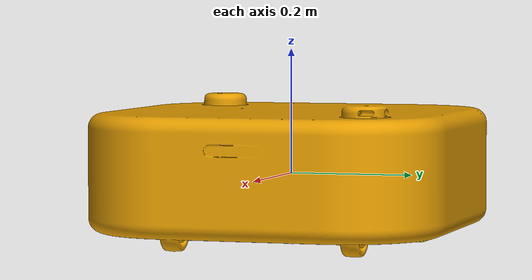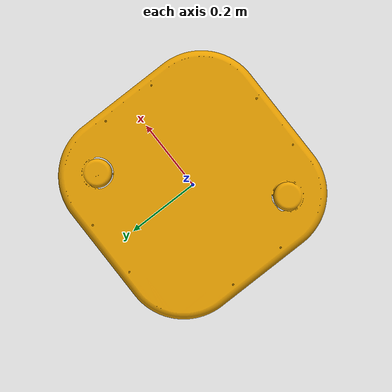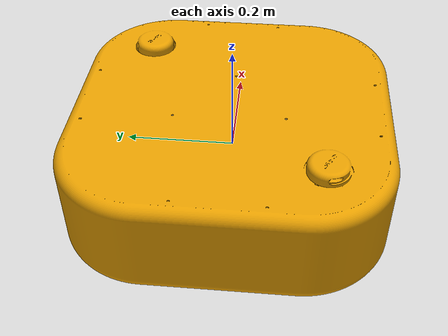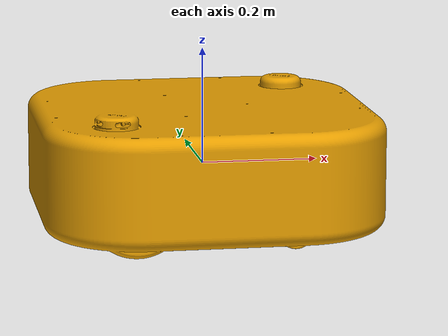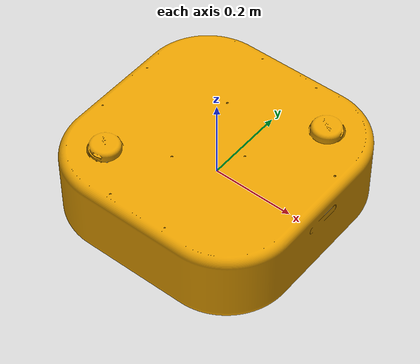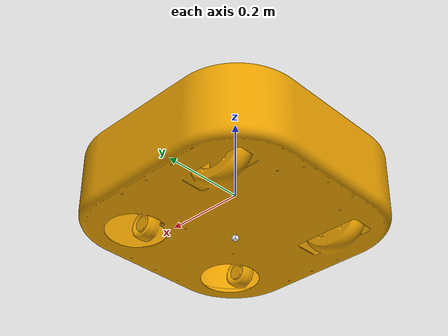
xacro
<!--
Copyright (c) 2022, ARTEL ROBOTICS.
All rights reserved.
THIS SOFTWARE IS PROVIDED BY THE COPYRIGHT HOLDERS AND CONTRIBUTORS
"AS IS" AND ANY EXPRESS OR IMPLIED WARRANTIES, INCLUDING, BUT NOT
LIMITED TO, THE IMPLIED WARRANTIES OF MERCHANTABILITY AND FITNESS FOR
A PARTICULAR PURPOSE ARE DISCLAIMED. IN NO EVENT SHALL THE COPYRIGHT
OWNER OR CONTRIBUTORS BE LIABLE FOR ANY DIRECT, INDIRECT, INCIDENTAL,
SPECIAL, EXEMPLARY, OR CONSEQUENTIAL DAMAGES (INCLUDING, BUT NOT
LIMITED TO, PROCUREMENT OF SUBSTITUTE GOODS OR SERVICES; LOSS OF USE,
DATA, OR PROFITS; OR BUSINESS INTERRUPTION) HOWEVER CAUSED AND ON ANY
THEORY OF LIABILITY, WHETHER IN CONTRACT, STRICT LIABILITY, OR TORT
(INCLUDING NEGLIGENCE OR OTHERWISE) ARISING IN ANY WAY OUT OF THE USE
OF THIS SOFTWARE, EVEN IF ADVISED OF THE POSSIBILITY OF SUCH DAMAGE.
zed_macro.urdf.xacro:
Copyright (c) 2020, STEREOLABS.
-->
<?xml version="1.0"?>

<robot name="artel_robot" xmlns:xacro="http://ros.org/wiki/xacro">

  <!--Includes-->
  <xacro:include filename="$(find camel_urdf)/urdf/zed_macro.urdf.xacro" />

  <!--Arguments-->
  <xacro:arg name="robot_model"  default='leo'/>
  <xacro:arg name="base_frame"   default="base_link" />

  <!--Properties-->
  <xacro:property name="M_PI"     value="3.1415926535897931" />
  <xacro:property name="model"    value="$(arg robot_model)/" />
  <xacro:property name="baseline"     value="0.12" />
  <xacro:property name="optical_offset_x" value="-0.01" />

  <xacro:if value="${model == 'no/'}">
        <xacro:property name="model" value="" />
  </xacro:if>

  <!-- base_link -->
  <link name="${model}$(arg base_frame)">
    <visual>
      <geometry>
        <mesh filename="package://camel_urdf/meshes/LEO.stl" scale="0.001 0.001 0.001"/> />
      </geometry>
      <origin rpy="0 0 ${M_PI/2}" xyz="0 0 0"/>
    </visual>

  </link>

  <!--Laser-->
  <joint name="$(arg base_frame)_laser_joint" type="fixed">
      <parent link="${model}$(arg base_frame)"/>
      <child link="${model}laser"/>
      <origin xyz="0.0 0.0 0.0" rpy="0 0 0"/>
  </joint>

  <link name="${model}laser">
      <origin xyz="0 0 0" rpy="0 0 0" />
  </link>

  <!--Base_Footprint-->
  <joint name="$(arg base_frame)_base_footprint_joint" type="fixed">
      <parent link="${model}$(arg base_frame)"/>
      <child link="${model}base_footprint"/>
      <origin xyz="0.0 0.0 -0.11" rpy="0 0 0"/>
  </joint>

  <link name="${model}base_footprint">
      <origin xyz="0 0 0" rpy="0 0 0" />
  </link>

  <!--Left Wheel-->
  <joint name="$(arg base_frame)_left_wheel_joint" type="fixed">
      <parent link="${model}base_footprint"/>
      <child link="${model}left_wheel"/>
      <origin xyz="-0.1435 0.1825 0.085" rpy="0 0 0"/>
  </joint>

  <link name="${model}left_wheel">
      <origin xyz="0 0 0" rpy="${M_PI/2} 0 0" />
  </link>

  <!--Right Wheel-->
  <joint name="$(arg base_frame)_right_wheel_joint" type="fixed">
      <parent link="${model}base_footprint"/>
      <child link="${model}right_wheel"/>
      <origin xyz="-0.1435 -0.1825 0.085" rpy="0 0 0"/>
  </joint>

  <link name="${model}right_wheel">
        <origin xyz="0 0 0" rpy="${M_PI/2} 0 0" />
  </link>

  <!--Intel RealSense Front Camera Center-->
  <joint name="$(arg base_frame)_front_camera_joint" type="fixed">
      <parent link="${model}base_footprint"/>
      <child link="${model}front_camera"/>
      <origin xyz="0.2825 0.0 0.155" rpy="0 0 0"/>
  </joint>

  <link name="${model}front_camera">
        <origin xyz="0 0 0" rpy="0 0 0" />
  </link>

  <!--Front Lidar-->
  <joint name="$(arg base_frame)_front_lidar_joint" type="fixed">
      <parent link="${model}base_footprint"/>
      <child link="${model}front_lidar"/>
      <origin xyz="0.17 0.17 0.22" rpy="0 0 ${-3*M_PI/4}"/>
  </joint>

  <link name="${model}front_lidar">
        <origin xyz="0 0 0" rpy="0 0 0" />
  </link>

  <!--Back Lidar-->
  <joint name="$(arg base_frame)_back_lidar_joint" type="fixed">
      <parent link="${model}base_footprint"/>
      <child link="${model}back_lidar"/>
      <origin xyz="-0.17 -0.17 0.22" rpy="0 0 ${M_PI/4}"/>
  </joint>

  <link name="${model}back_lidar">
        <origin xyz="0.0 0.0 0" rpy="0 0 0" />
  </link>

  <!--IMU-->
  <joint name="$(arg base_frame)_imu_joint" type="fixed">
      <parent link="${model}base_footprint"/>
      <child link="${model}imu"/>
      <origin xyz="0 0.0 0.0" rpy="0 0 0"/>
  </joint>

  <link name="${model}imu">
      <visual>
        <origin xyz="0 0 0" rpy="0 0 0" />
        <geometry>
          <box size="0.01 0.01 0.01"/>
        </geometry>
        <material name="white"/>
      </visual>
  </link>

</robot>

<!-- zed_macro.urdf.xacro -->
<robot xmlns:xacro="http://wiki.ros.org/xacro">
  <xacro:include filename="$(find camel_urdf)/urdf/include/materials.urdf.xacro" />
  <xacro:property name="M_PI"     value="3.1415926535897931" />

  <xacro:macro name="zed_camera" params="name=zed model=zed parent *origin">

    <xacro:if value="${model == 'zed2'}">
      <xacro:property name="baseline" value="0.12" />
      <xacro:property name="height" value="0.03" />
      <xacro:property name="bottom_slope" value="0.05" />
      <xacro:property name="screw_offset_x" value="0.0" />
      <xacro:property name="optical_offset_x" value="-0.01" />
    </xacro:if>

    <!-- Camera mounting point (the threaded screw hole in the bottom) -->
    <link name="${name}_base_link" />
    <joint name="${name}_base_joint" type="fixed">
      <parent link="${parent}"/>
      <child link="${name}_base_link"/>
      <xacro:insert_block name="origin" />
    </joint>

    <!-- Camera Center -->
    <link name="${name}_camera_center">
      <visual>
        <origin xyz="${screw_offset_x} 0 0" rpy="0 0 0"/>
        <geometry>
          <mesh filename="package://zed_interfaces/meshes/${model}.stl" />
        </geometry>
        <material name="${model}_mat" />
      </visual>
      <collision>
        <geometry>
          <mesh filename="package://zed_interfaces/meshes/${model}.stl" />
        </geometry>
      </collision>
    </link>
    <joint name="${name}_camera_center_joint" type="fixed">
      <parent link="${name}_base_link"/>
      <child link="${name}_camera_center"/>
      <origin xyz="0 0 ${height/2}" rpy="0 ${bottom_slope} 0" />
    </joint>

    <!-- Left Camera -->
    <link name="${name}_left_camera_frame" />
    <joint name="${name}_left_camera_joint" type="fixed">
      <parent link="${name}_camera_center"/>
      <child link="${name}_left_camera_frame"/>
      <origin xyz="0 ${baseline/2} 0" rpy="0 0 0" />
    </joint>

    <link name="${name}_left_camera_optical_frame"/>
    <joint name="${name}_left_camera_optical_joint" type="fixed">
      <origin xyz="${optical_offset_x} 0 0" rpy="-${M_PI/2} 0.0 -${M_PI/2}"/>
      <parent link="${name}_left_camera_frame"/>
      <child link="${name}_left_camera_optical_frame"/>
    </joint>

    <!-- Right Camera -->
    <link name="${name}_right_camera_frame" />
    <joint name="${name}_right_camera_joint" type="fixed">
      <parent link="${name}_camera_center"/>
      <child link="${name}_right_camera_frame"/>
      <origin xyz="0 -${baseline/2} 0" rpy="0 0 0" />
    </joint>

    <link name="${name}_right_camera_optical_frame"/>
    <joint name="${name}_right_camera_optical_joint" type="fixed">
      <origin xyz="${optical_offset_x} 0 0" rpy="-${M_PI/2} 0.0 -${M_PI/2}"/>
      <parent link="${name}_right_camera_frame"/>
      <child link="${name}_right_camera_optical_frame"/>
    </joint>

    <!-- ZED2 Sensors -->
    <xacro:if value="${model == 'zed2'}">
      <link name="${name}_mag_link" />
      <joint name="${name}_mag_joint" type="fixed">
        <parent link="${name}_camera_center"/>
        <child link="${name}_mag_link"/>
        <origin xyz="0 0 0" rpy="0 0 0" />
      </joint>

      <link name="${name}_baro_link" />
      <joint name="${name}_baro_joint" type="fixed">
        <parent link="${name}_camera_center"/>
        <child link="${name}_baro_link"/>
        <origin xyz="0 0 0" rpy="0 0 0" />
      </joint>

      <link name="${name}_temp_left_link" />
      <joint name="${name}_temp_left_joint" type="fixed">
        <parent link="${name}_left_camera_frame"/>
        <child link="${name}_temp_left_link"/>
        <origin xyz="0 0 0" rpy="0 0 0" />
      </joint>

      <link name="${name}_temp_right_link" />
      <joint name="${name}_temp_right_joint" type="fixed">
        <parent link="${name}_right_camera_frame"/>
        <child link="${name}_temp_right_link"/>
        <origin xyz="0 0 0" rpy="0 0 0" />
      </joint>
    </xacro:if>
  </xacro:macro>
</robot>

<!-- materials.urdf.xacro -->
<robot name="xacro_properties" xmlns:xacro="http://ros.org/wiki/xacro">>
    <!-- Init colour -->
    <material name="zed2_mat">
        <color rgba="0.25 0.25 0.25 0.99"/>
    </material>
    <material name="black">
      <color rgba="0.0 0.0 0.0 1.0"/>
    </material>
    <material name="dark">
        <color rgba="0.3 0.3 0.3 1.0"/>
    </material>
    <material name="light_black">
        <color rgba="0.4 0.4 0.4 1.0"/>
    </material>

    <material name="blue">
        <color rgba="0.0 0.0 0.8 1.0"/>
    </material>

    <material name="green">
        <color rgba="0.0 0.8 0.0 1.0"/>
    </material>

    <material name="grey">
        <color rgba="0.5 0.5 0.5 1.0"/>
    </material>

    <material name="orange">
        <color rgba="${255/255} ${108/255} ${10/255} 1.0"/>
    </material>

    <material name="brown">
        <color rgba="${222/255} ${207/255} ${195/255} 1.0"/>
    </material>

    <material name="red">
        <color rgba="0.8 0.0 0.0 1.0"/>
    </material>

    <material name="white">
        <color rgba="1.0 1.0 1.0 1.0"/>
    </material>
</robot>
